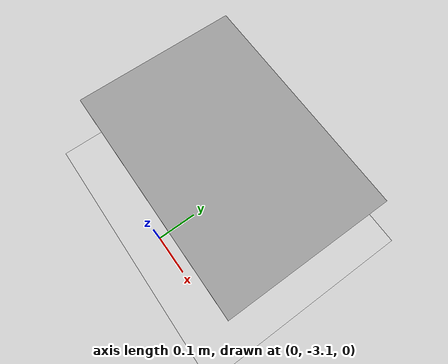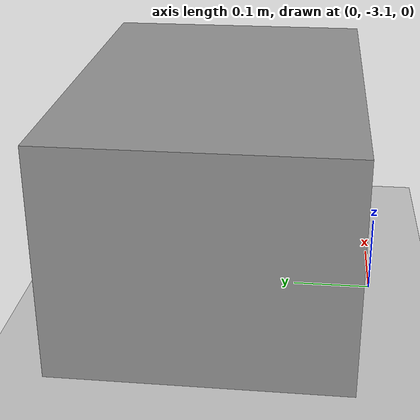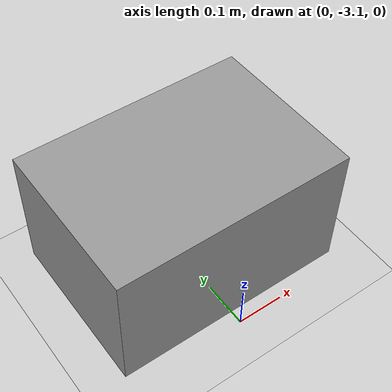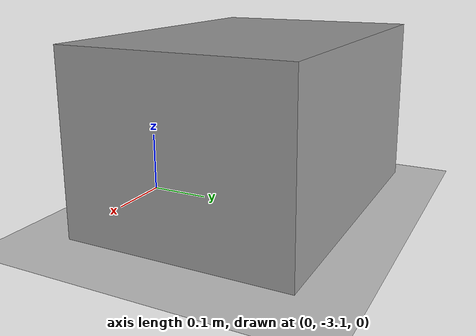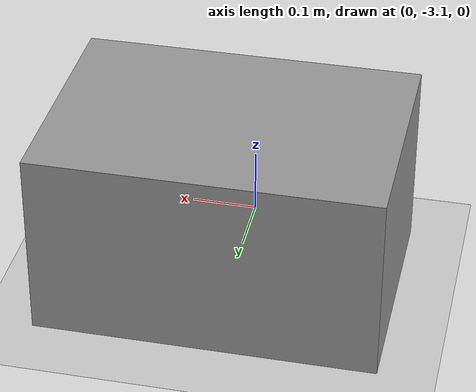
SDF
<?xml version="1.0" ?>
<sdf version="1.4">
    <world name="default">
        <include>
            <uri>model://ground_plane</uri>
        </include>
        <include>
            <uri>model://sun</uri>
        </include>
        <!-- plugin goes here -->
        <plugin name="world_plugin" filename="libworld_plugin.so" />
        <plugin name="set_angles_subscriber_plugin" filename="libset_angles_subscriber_plugin.so" />
        <model name='unit_box'>
      <pose>0 -2.9 0.15 0 0 0</pose>
      <link name='link'>
        <inertial>
          <mass>0.01</mass>
          <inertia>
            <ixx>0.166667</ixx>
            <ixy>0</ixy>
            <ixz>0</ixz>
            <iyy>0.166667</iyy>
            <iyz>0</iyz>
            <izz>0.166667</izz>
          </inertia>
          <pose>0 0 0 0 -0 0</pose>
        </inertial>
        <collision name='collision'>
          <geometry>
            <box>
              <size>0.5 0.35 0.28</size>
            </box>
          </geometry>
          <max_contacts>10</max_contacts>
          <surface>
            <contact>
              <ode/>
            </contact>
            <bounce/>
            <friction>
              <torsional>
                <ode/>
              </torsional>

          <ode>
            <mu>100</mu>
            <mu2>100</mu2>
          </ode>

            </friction>
          </surface>
        </collision>
        <visual name='visual'>
          <geometry>
            <box>
              <size>0.5 0.35 0.28</size>
            </box>
          </geometry>
          <material>
            <script>
              <name>Gazebo/Grey</name>
              <uri>file://media/materials/scripts/gazebo.material</uri>
            </script>
          </material>
        </visual>
        <self_collide>0</self_collide>
        <enable_wind>0</enable_wind>
        <kinematic>0</kinematic>
      </link>
    </model>
    </world>
</sdf>
